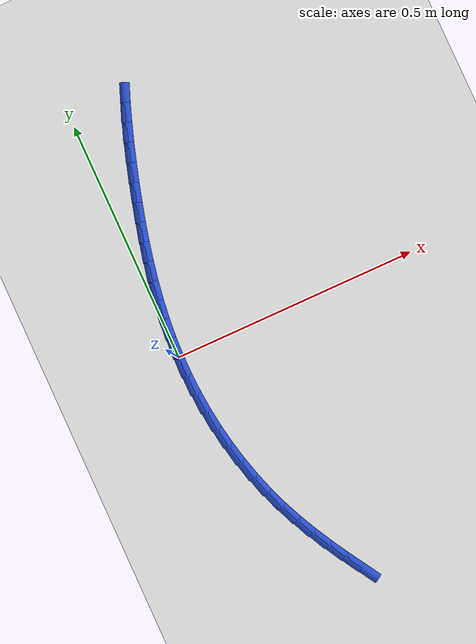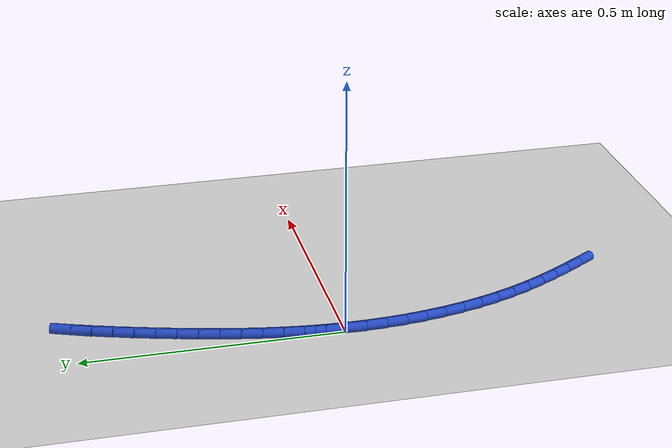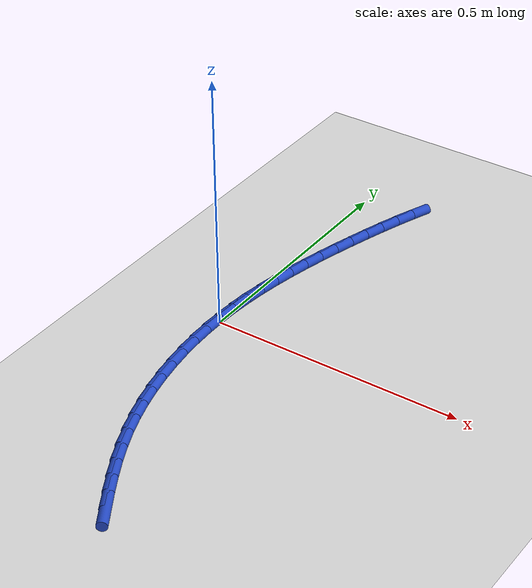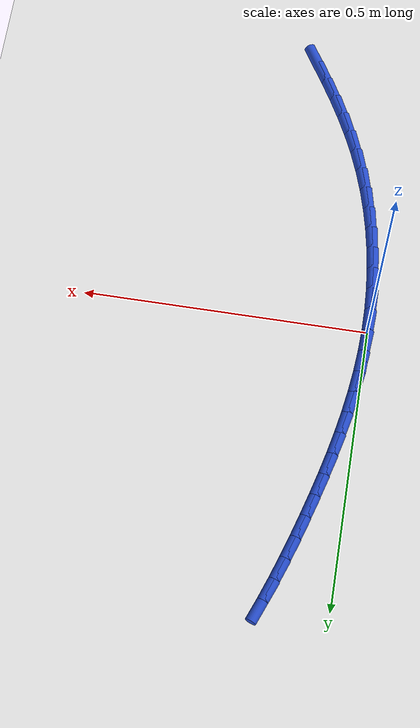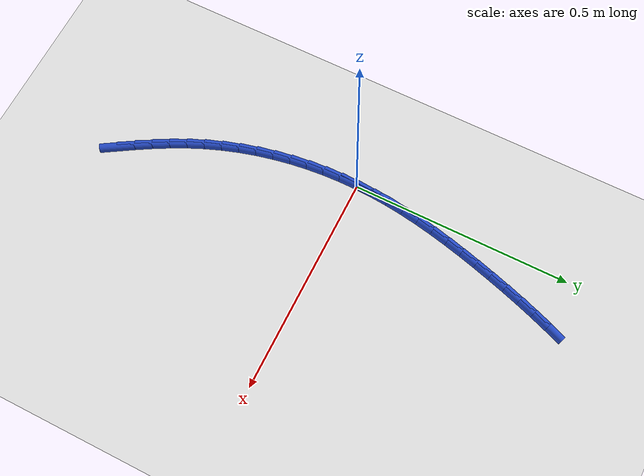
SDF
<sdf version="1.6">
 <world name="default">
  <model name="ground_plane">
   <static>1</static>
   <link name="link">
    <collision name="collision">
     <geometry><plane><normal>0 0 1</normal><size>100 100</size></plane></geometry>
     <surface><friction><ode><mu>100</mu><mu2>50</mu2></ode></friction></surface>
    </collision>
    <visual name="visual">
     <cast_shadows>0</cast_shadows>
     <geometry><plane><normal>0 0 1</normal><size>100 100</size></plane></geometry>
     <material>
      <script><uri>file://media/materials/scripts/gazebo.material</uri><name>Gazebo/WhiteGlow</name></script>
     </material>
    </visual>
   </link>
  </model>
  <model name="line">
   <link name="link_0">
    <pose>0.0 -2.0816681711721685e-17 0.01 0 1.57 1.526415938484821</pose>
    <collision name="collision">
     <geometry><cylinder><radius>0.01</radius><length>0.08</length></cylinder></geometry>
    </collision>
    <visual name="visual">
     <material>
      <script><name>Gazebo/Blue</name><uri>file://media/materials/scripts/gazebo.material</uri></script>
     </material>
     <geometry><cylinder><radius>0.01</radius><length>0.08</length></cylinder></geometry>
    </visual>
   </link>
   <link name="link_1">
    <pose>0.001745237916421908 0.03929870860774991 0.01 0 1.57 1.4853059597841747</pose>
    <collision name="collision">
     <geometry><cylinder><radius>0.01</radius><length>0.08</length></cylinder></geometry>
    </collision>
    <visual name="visual">
     <material>
      <script><name>Gazebo/Blue</name><uri>file://media/materials/scripts/gazebo.material</uri></script>
     </material>
     <geometry><cylinder><radius>0.01</radius><length>0.08</length></cylinder></geometry>
    </visual>
   </link>
   <link name="link_2">
    <pose>0.005094811004305353 0.07838391777009533 0.01 0 1.57 1.4475610001432913</pose>
    <collision name="collision">
     <geometry><cylinder><radius>0.01</radius><length>0.08</length></cylinder></geometry>
    </collision>
    <visual name="visual">
     <material>
      <script><name>Gazebo/Blue</name><uri>file://media/materials/scripts/gazebo.material</uri></script>
     </material>
     <geometry><cylinder><radius>0.01</radius><length>0.08</length></cylinder></geometry>
    </visual>
   </link>
   <link name="link_3">
    <pose>0.009912469521488719 0.11727897662239475 0.01 0 1.57 1.4133252606400961</pose>
    <collision name="collision">
     <geometry><cylinder><radius>0.01</radius><length>0.08</length></cylinder></geometry>
    </collision>
    <visual name="visual">
     <material>
      <script><name>Gazebo/Blue</name><uri>file://media/materials/scripts/gazebo.material</uri></script>
     </material>
     <geometry><cylinder><radius>0.01</radius><length>0.08</length></cylinder></geometry>
    </visual>
   </link>
   <link name="link_4">
    <pose>0.01606196372581039 0.15600723430000685 0.01 0 1.57 1.3826850319097512</pose>
    <collision name="collision">
     <geometry><cylinder><radius>0.01</radius><length>0.08</length></cylinder></geometry>
    </collision>
    <visual name="visual">
     <material>
      <script><name>Gazebo/Blue</name><uri>file://media/materials/scripts/gazebo.material</uri></script>
     </material>
     <geometry><cylinder><radius>0.01</radius><length>0.08</length></cylinder></geometry>
    </visual>
   </link>
   <link name="link_5">
    <pose>0.023407043875108724 0.19459203993829013 0.01 0 1.57 1.3556802302046884</pose>
    <collision name="collision">
     <geometry><cylinder><radius>0.01</radius><length>0.08</length></cylinder></geometry>
    </collision>
    <visual name="visual">
     <material>
      <script><name>Gazebo/Blue</name><uri>file://media/materials/scripts/gazebo.material</uri></script>
     </material>
     <geometry><cylinder><radius>0.01</radius><length>0.08</length></cylinder></geometry>
    </visual>
   </link>
   <link name="link_6">
    <pose>0.03181146022722212 0.23305674267260318 0.01 0 1.57 1.3323159891005447</pose>
    <collision name="collision">
     <geometry><cylinder><radius>0.01</radius><length>0.08</length></cylinder></geometry>
    </collision>
    <visual name="visual">
     <material>
      <script><name>Gazebo/Blue</name><uri>file://media/materials/scripts/gazebo.material</uri></script>
     </material>
     <geometry><cylinder><radius>0.01</radius><length>0.08</length></cylinder></geometry>
    </visual>
   </link>
   <link name="link_7">
    <pose>0.04113896303998898 0.27142469163830474 0.01 0 1.57 1.312573411127895</pose>
    <collision name="collision">
     <geometry><cylinder><radius>0.01</radius><length>0.08</length></cylinder></geometry>
    </collision>
    <visual name="visual">
     <material>
      <script><name>Gazebo/Blue</name><uri>file://media/materials/scripts/gazebo.material</uri></script>
     </material>
     <geometry><cylinder><radius>0.01</radius><length>0.08</length></cylinder></geometry>
    </visual>
   </link>
   <link name="link_8">
    <pose>0.05125330257124765 0.30971923597075324 0.01 0 1.57 1.2964150245780186</pose>
    <collision name="collision">
     <geometry><cylinder><radius>0.01</radius><length>0.08</length></cylinder></geometry>
    </collision>
    <visual name="visual">
     <material>
      <script><name>Gazebo/Blue</name><uri>file://media/materials/scripts/gazebo.material</uri></script>
     </material>
     <geometry><cylinder><radius>0.01</radius><length>0.08</length></cylinder></geometry>
    </visual>
   </link>
   <link name="link_9">
    <pose>0.06201837070188188 0.34796365214294855 0.01 0 1.57 1.2822043983445515</pose>
    <collision name="collision">
     <geometry><cylinder><radius>0.01</radius><length>0.08</length></cylinder></geometry>
    </collision>
    <visual name="visual">
     <material>
      <script><name>Gazebo/Blue</name><uri>file://media/materials/scripts/gazebo.material</uri></script>
     </material>
     <geometry><cylinder><radius>0.01</radius><length>0.08</length></cylinder></geometry>
    </visual>
   </link>
   <link name="link_10">
    <pose>0.07335563078557984 0.3861516785043607 0.01 0 1.57 1.265858474856631</pose>
    <collision name="collision">
     <geometry><cylinder><radius>0.01</radius><length>0.08</length></cylinder></geometry>
    </collision>
    <visual name="visual">
     <material>
      <script><name>Gazebo/Blue</name><uri>file://media/materials/scripts/gazebo.material</uri></script>
     </material>
     <geometry><cylinder><radius>0.01</radius><length>0.08</length></cylinder></geometry>
    </visual>
   </link>
   <link name="link_11">
    <pose>0.08533225023353455 0.424202297205951 0.01 0 1.57 1.24669182617268</pose>
    <collision name="collision">
     <geometry><cylinder><radius>0.01</radius><length>0.08</length></cylinder></geometry>
    </collision>
    <visual name="visual">
     <material>
      <script><name>Gazebo/Blue</name><uri>file://media/materials/scripts/gazebo.material</uri></script>
     </material>
     <geometry><cylinder><radius>0.01</radius><length>0.08</length></cylinder></geometry>
    </visual>
   </link>
   <link name="link_12">
    <pose>0.09803809642492745 0.46202284375450264 0.01 0 1.57 1.2246334604833622</pose>
    <collision name="collision">
     <geometry><cylinder><radius>0.01</radius><length>0.08</length></cylinder></geometry>
    </collision>
    <visual name="visual">
     <material>
      <script><name>Gazebo/Blue</name><uri>file://media/materials/scripts/gazebo.material</uri></script>
     </material>
     <geometry><cylinder><radius>0.01</radius><length>0.08</length></cylinder></geometry>
    </visual>
   </link>
   <link name="link_13">
    <pose>0.1115630367389401 0.4995206536567991 0.01 0 1.57 1.199601374923215</pose>
    <collision name="collision">
     <geometry><cylinder><radius>0.01</radius><length>0.08</length></cylinder></geometry>
    </collision>
    <visual name="visual">
     <material>
      <script><name>Gazebo/Blue</name><uri>file://media/materials/scripts/gazebo.material</uri></script>
     </material>
     <geometry><cylinder><radius>0.01</radius><length>0.08</length></cylinder></geometry>
    </visual>
   </link>
   <link name="link_166">
    <pose>0.15395628399317507 -0.5191706043167803 0.01 0 1.57 -1.020830122463112</pose>
    <collision name="collision">
     <geometry><cylinder><radius>0.01</radius><length>0.08</length></cylinder></geometry>
    </collision>
    <visual name="visual">
     <material>
      <script><name>Gazebo/Blue</name><uri>file://media/materials/scripts/gazebo.material</uri></script>
     </material>
     <geometry><cylinder><radius>0.01</radius><length>0.08</length></cylinder></geometry>
    </visual>
   </link>
   <link name="link_167">
    <pose>0.13347102301207592 -0.4857557608693555 0.01 0 1.57 -1.0442804963197334</pose>
    <collision name="collision">
     <geometry><cylinder><radius>0.01</radius><length>0.08</length></cylinder></geometry>
    </collision>
    <visual name="visual">
     <material>
      <script><name>Gazebo/Blue</name><uri>file://media/materials/scripts/gazebo.material</uri></script>
     </material>
     <geometry><cylinder><radius>0.01</radius><length>0.08</length></cylinder></geometry>
    </visual>
   </link>
   <link name="link_168">
    <pose>0.1138867381479748 -0.4520621500725363 0.01 0 1.57 -1.0747053189272702</pose>
    <collision name="collision">
     <geometry><cylinder><radius>0.01</radius><length>0.08</length></cylinder></geometry>
    </collision>
    <visual name="visual">
     <material>
      <script><name>Gazebo/Blue</name><uri>file://media/materials/scripts/gazebo.material</uri></script>
     </material>
     <geometry><cylinder><radius>0.01</radius><length>0.08</length></cylinder></geometry>
    </visual>
   </link>
   <link name="link_169">
    <pose>0.0954085696989905 -0.41792156875797914 0.01 0 1.57 -1.1120164598241982</pose>
    <collision name="collision">
     <geometry><cylinder><radius>0.01</radius><length>0.08</length></cylinder></geometry>
    </collision>
    <visual name="visual">
     <material>
      <script><name>Gazebo/Blue</name><uri>file://media/materials/scripts/gazebo.material</uri></script>
     </material>
     <geometry><cylinder><radius>0.01</radius><length>0.08</length></cylinder></geometry>
    </visual>
   </link>
   <link name="link_170">
    <pose>0.0782416579632414 -0.3831658137573394 0.01 0 1.57 -1.1559760380575166</pose>
    <collision name="collision">
     <geometry><cylinder><radius>0.01</radius><length>0.08</length></cylinder></geometry>
    </collision>
    <visual name="visual">
     <material>
      <script><name>Gazebo/Blue</name><uri>file://media/materials/scripts/gazebo.material</uri></script>
     </material>
     <geometry><cylinder><radius>0.01</radius><length>0.08</length></cylinder></geometry>
    </visual>
   </link>
   <link name="link_171">
    <pose>0.06259114323884694 -0.34762668190227486 0.01 0 1.57 -1.2053768089445431</pose>
    <collision name="collision">
     <geometry><cylinder><radius>0.01</radius><length>0.08</length></cylinder></geometry>
    </collision>
    <visual name="visual">
     <material>
      <script><name>Gazebo/Blue</name><uri>file://media/materials/scripts/gazebo.material</uri></script>
     </material>
     <geometry><cylinder><radius>0.01</radius><length>0.08</length></cylinder></geometry>
    </visual>
   </link>
   <link name="link_172">
    <pose>0.04864142591819858 -0.3111666421431955 0.01 0 1.57 -1.2549144376069912</pose>
    <collision name="collision">
     <geometry><cylinder><radius>0.01</radius><length>0.08</length></cylinder></geometry>
    </collision>
    <visual name="visual">
     <material>
      <script><name>Gazebo/Blue</name><uri>file://media/materials/scripts/gazebo.material</uri></script>
     </material>
     <geometry><cylinder><radius>0.01</radius><length>0.08</length></cylinder></geometry>
    </visual>
   </link>
   <link name="link_173">
    <pose>0.03644378336821863 -0.2738450382524081 0.01 0 1.57 -1.3028154760059698</pose>
    <collision name="collision">
     <geometry><cylinder><radius>0.01</radius><length>0.08</length></cylinder></geometry>
    </collision>
    <visual name="visual">
     <material>
      <script><name>Gazebo/Blue</name><uri>file://media/materials/scripts/gazebo.material</uri></script>
     </material>
     <geometry><cylinder><radius>0.01</radius><length>0.08</length></cylinder></geometry>
    </visual>
   </link>
   <link name="link_174">
    <pose>0.02599689257687146 -0.23579900437847062 0.01 0 1.57 -1.349355368097569</pose>
    <collision name="collision">
     <geometry><cylinder><radius>0.01</radius><length>0.08</length></cylinder></geometry>
    </collision>
    <visual name="visual">
     <material>
      <script><name>Gazebo/Blue</name><uri>file://media/materials/scripts/gazebo.material</uri></script>
     </material>
     <geometry><cylinder><radius>0.01</radius><length>0.08</length></cylinder></geometry>
    </visual>
   </link>
   <link name="link_175">
    <pose>0.017299301137727145 -0.19716586603051373 0.01 0 1.57 -1.3948152735257138</pose>
    <collision name="collision">
     <geometry><cylinder><radius>0.01</radius><length>0.08</length></cylinder></geometry>
    </collision>
    <visual name="visual">
     <material>
      <script><name>Gazebo/Blue</name><uri>file://media/materials/scripts/gazebo.material</uri></script>
     </material>
     <geometry><cylinder><radius>0.01</radius><length>0.08</length></cylinder></geometry>
    </visual>
   </link>
   <link name="link_176">
    <pose>0.010349556644355605 -0.15808294871766676 0.01 0 1.57 -1.4394762030604114</pose>
    <collision name="collision">
     <geometry><cylinder><radius>0.01</radius><length>0.08</length></cylinder></geometry>
    </collision>
    <visual name="visual">
     <material>
      <script><name>Gazebo/Blue</name><uri>file://media/materials/scripts/gazebo.material</uri></script>
     </material>
     <geometry><cylinder><radius>0.01</radius><length>0.08</length></cylinder></geometry>
    </visual>
   </link>
   <link name="link_177">
    <pose>0.005146206690327166 -0.11868757794906205 0.01 0 1.57 -1.4836192033533595</pose>
    <collision name="collision">
     <geometry><cylinder><radius>0.01</radius><length>0.08</length></cylinder></geometry>
    </collision>
    <visual name="visual">
     <material>
      <script><name>Gazebo/Blue</name><uri>file://media/materials/scripts/gazebo.material</uri></script>
     </material>
     <geometry><cylinder><radius>0.01</radius><length>0.08</length></cylinder></geometry>
    </visual>
   </link>
   <link name="link_178">
    <pose>0.0016877988692117173 -0.07911707923382903 0.01 0 1.57 -1.5275264152059325</pose>
    <collision name="collision">
     <geometry><cylinder><radius>0.01</radius><length>0.08</length></cylinder></geometry>
    </collision>
    <visual name="visual">
     <material>
      <script><name>Gazebo/Blue</name><uri>file://media/materials/scripts/gazebo.material</uri></script>
     </material>
     <geometry><cylinder><radius>0.01</radius><length>0.08</length></cylinder></geometry>
    </visual>
   </link>
   <link name="link_179">
    <pose>-2.7119225420683783e-05 -0.039508778081098324 0.01 0 1.57 1.570109916774676</pose>
    <collision name="collision">
     <geometry><cylinder><radius>0.01</radius><length>0.08</length></cylinder></geometry>
    </collision>
    <visual name="visual">
     <material>
      <script><name>Gazebo/Blue</name><uri>file://media/materials/scripts/gazebo.material</uri></script>
     </material>
     <geometry><cylinder><radius>0.01</radius><length>0.08</length></cylinder></geometry>
    </visual>
   </link>
   <link name="link_180">
    <pose>6.938893903907228e-18 -2.220446049250313e-16 0.01 0 1.57 1.5258147896185907</pose>
    <collision name="collision">
     <geometry><cylinder><radius>0.01</radius><length>0.08</length></cylinder></geometry>
    </collision>
    <visual name="visual">
     <material>
      <script><name>Gazebo/Blue</name><uri>file://media/materials/scripts/gazebo.material</uri></script>
     </material>
     <geometry><cylinder><radius>0.01</radius><length>0.08</length></cylinder></geometry>
    </visual>
   </link>
   <link name="link_181">
    <pose>0.0017677041390438408 0.0392719295003347 0.01 0 1.57 1.5258147896185903</pose>
    <collision name="collision">
     <geometry><cylinder><radius>0.01</radius><length>0.08</length></cylinder></geometry>
    </collision>
    <visual name="visual">
     <material>
      <script><name>Gazebo/Blue</name><uri>file://media/materials/scripts/gazebo.material</uri></script>
     </material>
     <geometry><cylinder><radius>0.01</radius><length>0.08</length></cylinder></geometry>
    </visual>
   </link>
  </model>
 </world>
</sdf>
